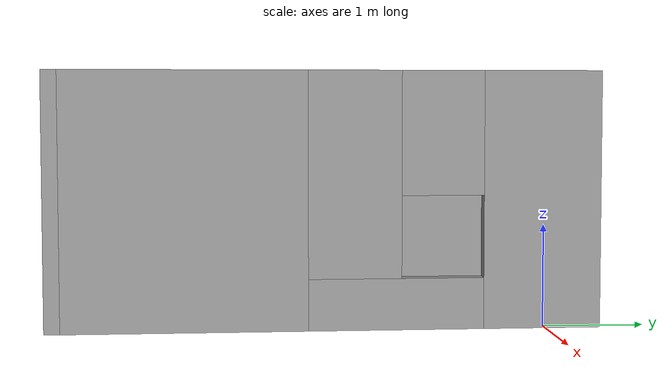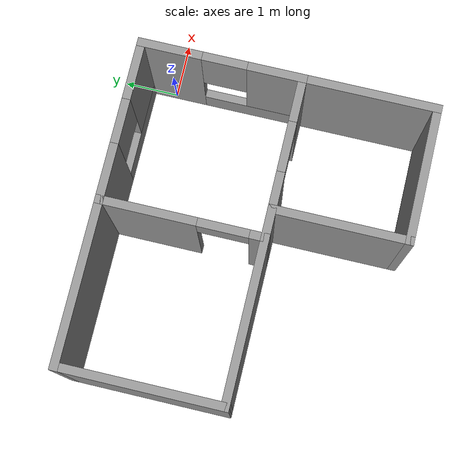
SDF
<?xml version='1.0'?>
<sdf version='1.7'>
  <model name='house'>
    <pose>-2.83467 -2.12665 0 0 -0 0</pose>
    <link name='Wall_0'>
      <pose>1.425 2.6 0 0 -0 0</pose>
      <visual name='Wall_0_Visual_0'>
        <pose>-0.961956 0 1.25 0 -0 0</pose>
        <geometry>
          <box>
            <size>1.07609 0.15 2.5</size>
          </box>
        </geometry>
        <material>
          <script>
            <uri>file://media/materials/scripts/gazebo.material</uri>
            <name>Gazebo/Grey</name>
          </script>
          <ambient>1 1 1 1</ambient>
        </material>
        <meta>
          <layer>0</layer>
        </meta>
      </visual>
      <collision name='Wall_0_Collision_0'>
        <geometry>
          <box>
            <size>1.07609 0.15 2.5</size>
          </box>
        </geometry>
        <pose>-0.961956 0 1.25 0 -0 0</pose>
      </collision>
      <visual name='Wall_0_Visual_1'>
        <pose>0.538044 0 0.25 0 -0 0</pose>
        <geometry>
          <box>
            <size>1.92391 0.15 0.5</size>
          </box>
        </geometry>
        <material>
          <script>
            <uri>file://media/materials/scripts/gazebo.material</uri>
            <name>Gazebo/Grey</name>
          </script>
          <ambient>1 1 1 1</ambient>
        </material>
        <meta>
          <layer>0</layer>
        </meta>
      </visual>
      <collision name='Wall_0_Collision_1'>
        <geometry>
          <box>
            <size>1.92391 0.15 0.5</size>
          </box>
        </geometry>
        <pose>0.538044 0 0.25 0 -0 0</pose>
      </collision>
      <visual name='Wall_0_Visual_2'>
        <pose>0.938044 0 1.5 0 -0 0</pose>
        <geometry>
          <box>
            <size>1.12391 0.15 2</size>
          </box>
        </geometry>
        <material>
          <script>
            <uri>file://media/materials/scripts/gazebo.material</uri>
            <name>Gazebo/Grey</name>
          </script>
          <ambient>1 1 1 1</ambient>
        </material>
        <meta>
          <layer>0</layer>
        </meta>
      </visual>
      <collision name='Wall_0_Collision_2'>
        <geometry>
          <box>
            <size>1.12391 0.15 2</size>
          </box>
        </geometry>
        <pose>0.938044 0 1.5 0 -0 0</pose>
      </collision>
      <visual name='Wall_0_Visual_3'>
        <pose>-0.023912 0 1.9 0 -0 0</pose>
        <geometry>
          <box>
            <size>0.8 0.15 1.2</size>
          </box>
        </geometry>
        <material>
          <script>
            <uri>file://media/materials/scripts/gazebo.material</uri>
            <name>Gazebo/Grey</name>
          </script>
          <ambient>1 1 1 1</ambient>
        </material>
        <meta>
          <layer>0</layer>
        </meta>
      </visual>
      <collision name='Wall_0_Collision_3'>
        <geometry>
          <box>
            <size>0.8 0.15 1.2</size>
          </box>
        </geometry>
        <pose>-0.023912 0 1.9 0 -0 0</pose>
      </collision>
    </link>
    <link name='Wall_1'>
      <pose>2.85 1.175 0 0 -0 -1.5708</pose>
      <visual name='Wall_1_Visual_0'>
        <pose>-0.92516 0 1.25 0 -0 0</pose>
        <geometry>
          <box>
            <size>1.14968 0.15 2.5</size>
          </box>
        </geometry>
        <material>
          <script>
            <uri>file://media/materials/scripts/gazebo.material</uri>
            <name>Gazebo/Grey</name>
          </script>
          <ambient>1 1 1 1</ambient>
        </material>
        <meta>
          <layer>0</layer>
        </meta>
      </visual>
      <collision name='Wall_1_Collision_0'>
        <geometry>
          <box>
            <size>1.14968 0.15 2.5</size>
          </box>
        </geometry>
        <pose>-0.92516 0 1.25 0 -0 0</pose>
      </collision>
      <visual name='Wall_1_Visual_1'>
        <pose>0.57484 0 0.25 0 -0 0</pose>
        <geometry>
          <box>
            <size>1.85032 0.15 0.5</size>
          </box>
        </geometry>
        <material>
          <script>
            <uri>file://media/materials/scripts/gazebo.material</uri>
            <name>Gazebo/Grey</name>
          </script>
          <ambient>1 1 1 1</ambient>
        </material>
        <meta>
          <layer>0</layer>
        </meta>
      </visual>
      <collision name='Wall_1_Collision_1'>
        <geometry>
          <box>
            <size>1.85032 0.15 0.5</size>
          </box>
        </geometry>
        <pose>0.57484 0 0.25 0 -0 0</pose>
      </collision>
      <visual name='Wall_1_Visual_2'>
        <pose>0.97484 0 1.5 0 -0 0</pose>
        <geometry>
          <box>
            <size>1.05032 0.15 2</size>
          </box>
        </geometry>
        <material>
          <script>
            <uri>file://media/materials/scripts/gazebo.material</uri>
            <name>Gazebo/Grey</name>
          </script>
          <ambient>1 1 1 1</ambient>
        </material>
        <meta>
          <layer>0</layer>
        </meta>
      </visual>
      <collision name='Wall_1_Collision_2'>
        <geometry>
          <box>
            <size>1.05032 0.15 2</size>
          </box>
        </geometry>
        <pose>0.97484 0 1.5 0 -0 0</pose>
      </collision>
      <visual name='Wall_1_Visual_3'>
        <pose>0.049679 0 1.9 0 -0 0</pose>
        <geometry>
          <box>
            <size>0.8 0.15 1.2</size>
          </box>
        </geometry>
        <material>
          <script>
            <uri>file://media/materials/scripts/gazebo.material</uri>
            <name>Gazebo/Grey</name>
          </script>
          <ambient>1 1 1 1</ambient>
        </material>
        <meta>
          <layer>0</layer>
        </meta>
      </visual>
      <collision name='Wall_1_Collision_3'>
        <geometry>
          <box>
            <size>0.8 0.15 1.2</size>
          </box>
        </geometry>
        <pose>0.049679 0 1.9 0 -0 0</pose>
      </collision>
    </link>
    <link name='Wall_17'>
      <collision name='Wall_17_Collision'>
        <geometry>
          <box>
            <size>2.5 0.15 2.5</size>
          </box>
        </geometry>
        <pose>0 0 1.25 0 -0 0</pose>
      </collision>
      <visual name='Wall_17_Visual'>
        <pose>0 0 1.25 0 -0 0</pose>
        <geometry>
          <box>
            <size>2.5 0.15 2.5</size>
          </box>
        </geometry>
        <material>
          <script>
            <uri>file://media/materials/scripts/gazebo.material</uri>
            <name>Gazebo/Grey</name>
          </script>
          <ambient>1 1 1 1</ambient>
        </material>
        <meta>
          <layer>0</layer>
        </meta>
      </visual>
      <pose>2.85 -1.425 0 0 -0 -1.5708</pose>
    </link>
    <link name='Wall_18'>
      <collision name='Wall_18_Collision'>
        <geometry>
          <box>
            <size>2.5 0.15 2.5</size>
          </box>
        </geometry>
        <pose>0 0 1.25 0 -0 0</pose>
      </collision>
      <visual name='Wall_18_Visual'>
        <pose>0 0 1.25 0 -0 0</pose>
        <geometry>
          <box>
            <size>2.5 0.15 2.5</size>
          </box>
        </geometry>
        <material>
          <script>
            <uri>file://media/materials/scripts/gazebo.material</uri>
            <name>Gazebo/Grey</name>
          </script>
          <ambient>1 1 1 1</ambient>
        </material>
        <meta>
          <layer>0</layer>
        </meta>
      </visual>
      <pose>1.675 -2.6 0 0 -0 3.14159</pose>
    </link>
    <link name='Wall_19'>
      <collision name='Wall_19_Collision'>
        <geometry>
          <box>
            <size>2.5 0.15 2.5</size>
          </box>
        </geometry>
        <pose>0 0 1.25 0 -0 0</pose>
      </collision>
      <visual name='Wall_19_Visual'>
        <pose>0 0 1.25 0 -0 0</pose>
        <geometry>
          <box>
            <size>2.5 0.15 2.5</size>
          </box>
        </geometry>
        <material>
          <script>
            <uri>file://media/materials/scripts/gazebo.material</uri>
            <name>Gazebo/Grey</name>
          </script>
          <ambient>1 1 1 1</ambient>
        </material>
        <meta>
          <layer>0</layer>
        </meta>
      </visual>
      <pose>0.5 -1.425 0 0 -0 1.5708</pose>
    </link>
    <link name='Wall_2'>
      <pose>1.425 -0.25 0 0 -0 3.14159</pose>
      <visual name='Wall_2_Visual_0'>
        <pose>-1.06704 0 1.25 0 -0 0</pose>
        <geometry>
          <box>
            <size>0.865914 0.15 2.5</size>
          </box>
        </geometry>
        <material>
          <script>
            <uri>file://media/materials/scripts/gazebo.material</uri>
            <name>Gazebo/Grey</name>
          </script>
          <ambient>1 1 1 1</ambient>
        </material>
        <meta>
          <layer>0</layer>
        </meta>
      </visual>
      <collision name='Wall_2_Collision_0'>
        <geometry>
          <box>
            <size>0.865914 0.15 2.5</size>
          </box>
        </geometry>
        <pose>-1.06704 0 1.25 0 -0 0</pose>
      </collision>
      <visual name='Wall_2_Visual_1'>
        <pose>0.882957 0 1.25 0 -0 0</pose>
        <geometry>
          <box>
            <size>1.23409 0.15 2.5</size>
          </box>
        </geometry>
        <material>
          <script>
            <uri>file://media/materials/scripts/gazebo.material</uri>
            <name>Gazebo/Grey</name>
          </script>
          <ambient>1 1 1 1</ambient>
        </material>
        <meta>
          <layer>0</layer>
        </meta>
      </visual>
      <collision name='Wall_2_Collision_1'>
        <geometry>
          <box>
            <size>1.23409 0.15 2.5</size>
          </box>
        </geometry>
        <pose>0.882957 0 1.25 0 -0 0</pose>
      </collision>
      <visual name='Wall_2_Visual_2'>
        <pose>-0.184086 0 2.25 0 -0 0</pose>
        <geometry>
          <box>
            <size>0.9 0.15 0.5</size>
          </box>
        </geometry>
        <material>
          <script>
            <uri>file://media/materials/scripts/gazebo.material</uri>
            <name>Gazebo/Grey</name>
          </script>
          <ambient>1 1 1 1</ambient>
        </material>
        <meta>
          <layer>0</layer>
        </meta>
      </visual>
      <collision name='Wall_2_Collision_2'>
        <geometry>
          <box>
            <size>0.9 0.15 0.5</size>
          </box>
        </geometry>
        <pose>-0.184086 0 2.25 0 -0 0</pose>
      </collision>
    </link>
    <link name='Wall_3'>
      <pose>-0 1.175 0 0 -0 1.5708</pose>
      <visual name='Wall_3_Visual_0'>
        <pose>-1.32852 0 1.25 0 -0 0</pose>
        <geometry>
          <box>
            <size>0.342961 0.15 2.5</size>
          </box>
        </geometry>
        <material>
          <script>
            <uri>file://media/materials/scripts/gazebo.material</uri>
            <name>Gazebo/Grey</name>
          </script>
          <ambient>1 1 1 1</ambient>
        </material>
        <meta>
          <layer>0</layer>
        </meta>
      </visual>
      <collision name='Wall_3_Collision_0'>
        <geometry>
          <box>
            <size>0.342961 0.15 2.5</size>
          </box>
        </geometry>
        <pose>-1.32852 0 1.25 0 -0 0</pose>
      </collision>
      <visual name='Wall_3_Visual_1'>
        <pose>0.621481 0 1.25 0 -0 0</pose>
        <geometry>
          <box>
            <size>1.75704 0.15 2.5</size>
          </box>
        </geometry>
        <material>
          <script>
            <uri>file://media/materials/scripts/gazebo.material</uri>
            <name>Gazebo/Grey</name>
          </script>
          <ambient>1 1 1 1</ambient>
        </material>
        <meta>
          <layer>0</layer>
        </meta>
      </visual>
      <collision name='Wall_3_Collision_1'>
        <geometry>
          <box>
            <size>1.75704 0.15 2.5</size>
          </box>
        </geometry>
        <pose>0.621481 0 1.25 0 -0 0</pose>
      </collision>
      <visual name='Wall_3_Visual_2'>
        <pose>-0.707039 0 2.25 0 -0 0</pose>
        <geometry>
          <box>
            <size>0.9 0.15 0.5</size>
          </box>
        </geometry>
        <material>
          <script>
            <uri>file://media/materials/scripts/gazebo.material</uri>
            <name>Gazebo/Grey</name>
          </script>
          <ambient>1 1 1 1</ambient>
        </material>
        <meta>
          <layer>0</layer>
        </meta>
      </visual>
      <collision name='Wall_3_Collision_2'>
        <geometry>
          <box>
            <size>0.9 0.15 0.5</size>
          </box>
        </geometry>
        <pose>-0.707039 0 2.25 0 -0 0</pose>
      </collision>
    </link>
    <link name='Wall_5'>
      <collision name='Wall_5_Collision'>
        <geometry>
          <box>
            <size>3 0.15 2.5</size>
          </box>
        </geometry>
        <pose>0 0 1.25 0 -0 0</pose>
      </collision>
      <visual name='Wall_5_Visual'>
        <pose>0 0 1.25 0 -0 0</pose>
        <geometry>
          <box>
            <size>3 0.15 2.5</size>
          </box>
        </geometry>
        <material>
          <script>
            <uri>file://media/materials/scripts/gazebo.material</uri>
            <name>Gazebo/Grey</name>
          </script>
          <ambient>1 1 1 1</ambient>
        </material>
        <meta>
          <layer>0</layer>
        </meta>
      </visual>
      <pose>-1.425 2.6 0 0 -0 3.14159</pose>
    </link>
    <link name='Wall_6'>
      <collision name='Wall_6_Collision'>
        <geometry>
          <box>
            <size>3 0.15 2.5</size>
          </box>
        </geometry>
        <pose>0 0 1.25 0 -0 0</pose>
      </collision>
      <visual name='Wall_6_Visual'>
        <pose>0 0 1.25 0 -0 0</pose>
        <geometry>
          <box>
            <size>3 0.15 2.5</size>
          </box>
        </geometry>
        <material>
          <script>
            <uri>file://media/materials/scripts/gazebo.material</uri>
            <name>Gazebo/Grey</name>
          </script>
          <ambient>1 1 1 1</ambient>
        </material>
        <meta>
          <layer>0</layer>
        </meta>
      </visual>
      <pose>-2.85 1.175 0 0 -0 -1.5708</pose>
    </link>
    <link name='Wall_7'>
      <collision name='Wall_7_Collision'>
        <geometry>
          <box>
            <size>3 0.15 2.5</size>
          </box>
        </geometry>
        <pose>0 0 1.25 0 -0 0</pose>
      </collision>
      <visual name='Wall_7_Visual'>
        <pose>0 0 1.25 0 -0 0</pose>
        <geometry>
          <box>
            <size>3 0.15 2.5</size>
          </box>
        </geometry>
        <material>
          <script>
            <uri>file://media/materials/scripts/gazebo.material</uri>
            <name>Gazebo/Grey</name>
          </script>
          <ambient>1 1 1 1</ambient>
        </material>
        <meta>
          <layer>0</layer>
        </meta>
      </visual>
      <pose>-1.425 -0.25 0 0 -0 0</pose>
    </link>
    <static>1</static>
  </model>
</sdf>
